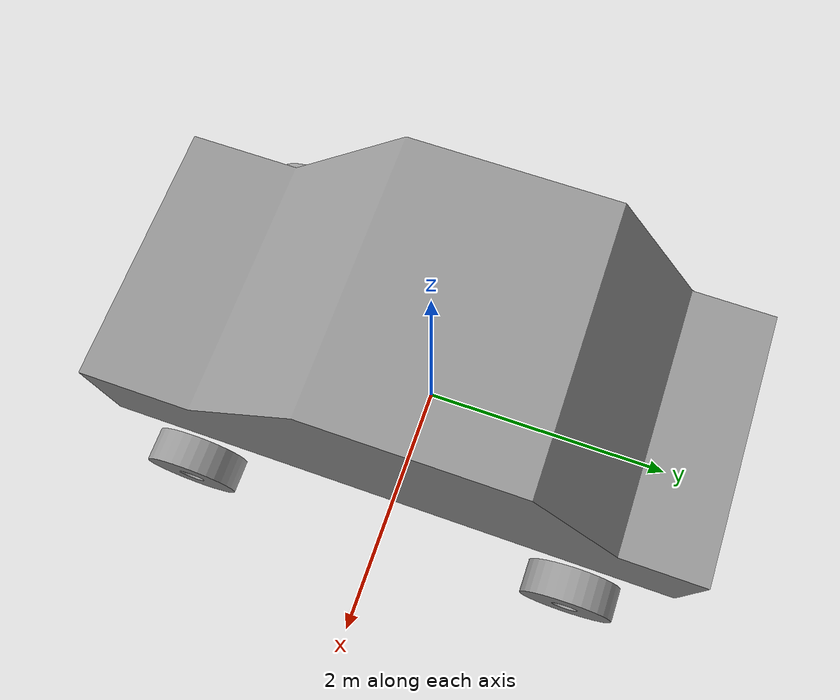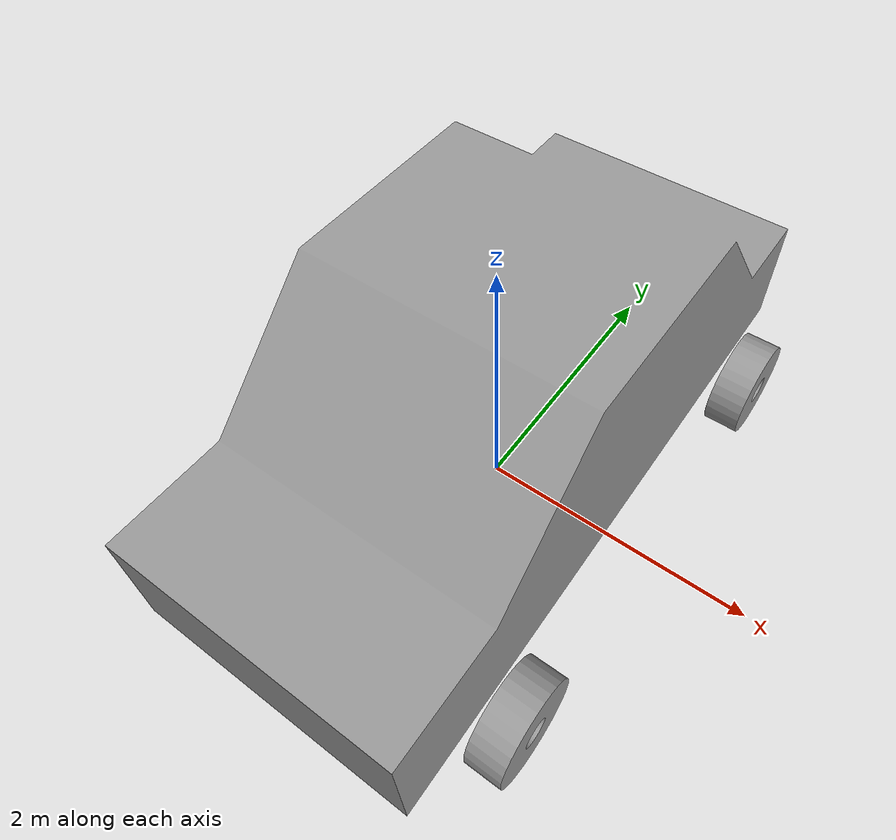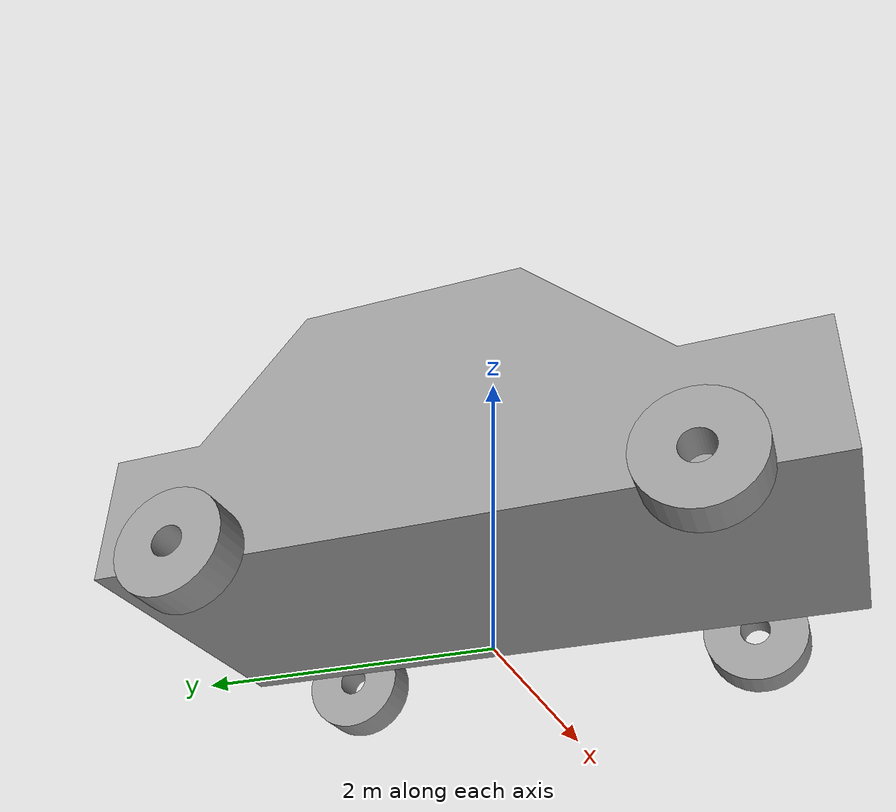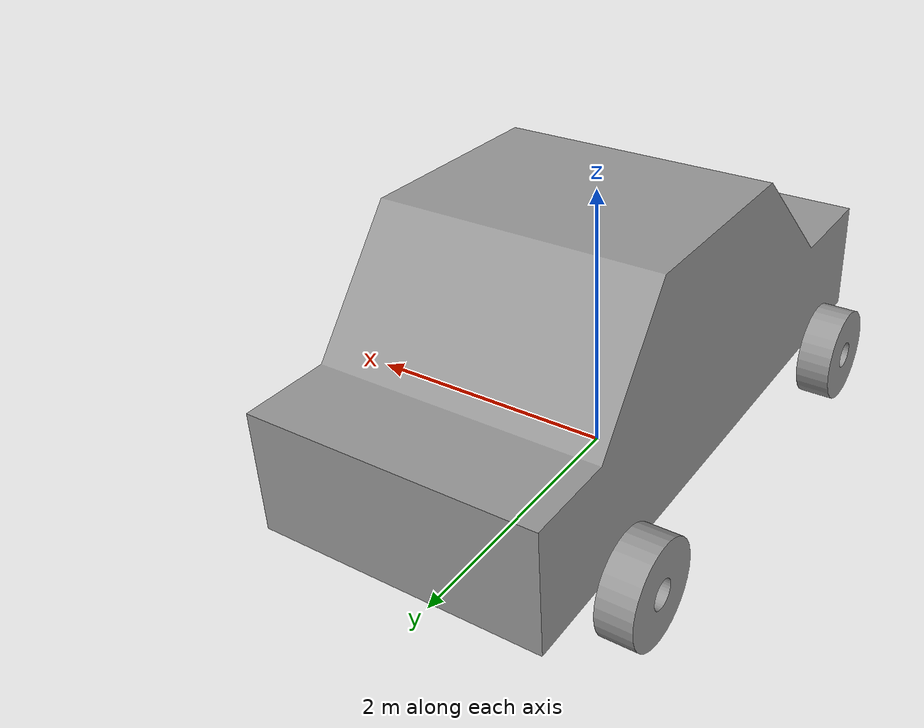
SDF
<?xml version='1.0'?>
<sdf version='1.7'>
  <model name='car_model_full'>
    <link name='link_0'>
      <inertial>
        <mass>1</mass>
        <inertia>
          <ixx>0.166667</ixx>
          <ixy>0</ixy>
          <ixz>0</ixz>
          <iyy>0.166667</iyy>
          <iyz>0</iyz>
          <izz>0.166667</izz>
        </inertia>
        <pose>0 0 0 0 -0 0</pose>
      </inertial>
      <pose>0 0 0.35 0 -0 0</pose>
      <gravity>1</gravity>
      <self_collide>0</self_collide>
      <kinematic>0</kinematic>
      <enable_wind>0</enable_wind>
      <visual name='visual'>
        <pose>0 0 0 0 -0 0</pose>
        <geometry>
          <mesh>
            <uri>/home/allsparknouvaneonss/Desktop/car_chasis.dae</uri>
            <scale>1 1 1</scale>
          </mesh>
        </geometry>
        <material>
          <lighting>1</lighting>
          <script>
            <uri>file://media/materials/scripts/gazebo.material</uri>
            <name>Gazebo/Grey</name>
          </script>
          <shader type='pixel'>
            <normal_map>__default__</normal_map>
          </shader>
          <ambient>0.3 0.3 0.3 1</ambient>
          <diffuse>0.7 0.7 0.7 1</diffuse>
          <specular>0.01 0.01 0.01 1</specular>
          <emissive>0 0 0 1</emissive>
        </material>
        <transparency>0</transparency>
        <cast_shadows>1</cast_shadows>
      </visual>
      <collision name='collision'>
        <laser_retro>0</laser_retro>
        <max_contacts>10</max_contacts>
        <pose>0 0 0 0 -0 0</pose>
        <geometry>
          <mesh>
            <uri>/home/allsparknouvaneonss/Desktop/car_chasis.dae</uri>
            <scale>1 1 1</scale>
          </mesh>
        </geometry>
        <surface>
          <friction>
            <ode>
              <mu>1</mu>
              <mu2>1</mu2>
              <fdir1>0 0 0</fdir1>
              <slip1>0</slip1>
              <slip2>0</slip2>
            </ode>
            <torsional>
              <coefficient>1</coefficient>
              <patch_radius>0</patch_radius>
              <surface_radius>0</surface_radius>
              <use_patch_radius>1</use_patch_radius>
              <ode>
                <slip>0</slip>
              </ode>
            </torsional>
          </friction>
          <bounce>
            <restitution_coefficient>0</restitution_coefficient>
            <threshold>1e+06</threshold>
          </bounce>
          <contact>
            <collide_without_contact>0</collide_without_contact>
            <collide_without_contact_bitmask>1</collide_without_contact_bitmask>
            <collide_bitmask>1</collide_bitmask>
            <ode>
              <soft_cfm>0</soft_cfm>
              <soft_erp>0.2</soft_erp>
              <kp>1e+13</kp>
              <kd>1</kd>
              <max_vel>0.01</max_vel>
              <min_depth>0</min_depth>
            </ode>
            <bullet>
              <split_impulse>1</split_impulse>
              <split_impulse_penetration_threshold>-0.01</split_impulse_penetration_threshold>
              <soft_cfm>0</soft_cfm>
              <soft_erp>0.2</soft_erp>
              <kp>1e+13</kp>
              <kd>1</kd>
            </bullet>
          </contact>
        </surface>
      </collision>
    </link>
    <link name='link_1'>
      <inertial>
        <mass>1</mass>
        <inertia>
          <ixx>0.166667</ixx>
          <ixy>0</ixy>
          <ixz>0</ixz>
          <iyy>0.166667</iyy>
          <iyz>0</iyz>
          <izz>0.166667</izz>
        </inertia>
        <pose>0 0 0 0 -0 0</pose>
      </inertial>
      <pose>1.2 -1.5 0.35 0 -0 0</pose>
      <gravity>1</gravity>
      <self_collide>0</self_collide>
      <kinematic>0</kinematic>
      <enable_wind>0</enable_wind>
      <visual name='visual'>
        <pose>0 0 0 0 -0 0</pose>
        <geometry>
          <mesh>
            <uri>/home/allsparknouvaneonss/Desktop/car_chasisi_wheel.dae</uri>
            <scale>1 1 1</scale>
          </mesh>
        </geometry>
        <material>
          <lighting>1</lighting>
          <script>
            <uri>file://media/materials/scripts/gazebo.material</uri>
            <name>Gazebo/Grey</name>
          </script>
          <shader type='pixel'>
            <normal_map>__default__</normal_map>
          </shader>
          <ambient>0.3 0.3 0.3 1</ambient>
          <diffuse>0.7 0.7 0.7 1</diffuse>
          <specular>0.01 0.01 0.01 1</specular>
          <emissive>0 0 0 1</emissive>
        </material>
        <transparency>0</transparency>
        <cast_shadows>1</cast_shadows>
      </visual>
      <collision name='collision'>
        <laser_retro>0</laser_retro>
        <max_contacts>10</max_contacts>
        <pose>0 0 0 0 -0 0</pose>
        <geometry>
          <mesh>
            <uri>/home/allsparknouvaneonss/Desktop/car_chasisi_wheel.dae</uri>
            <scale>1 1 1</scale>
          </mesh>
        </geometry>
        <surface>
          <friction>
            <ode>
              <mu>1</mu>
              <mu2>1</mu2>
              <fdir1>0 0 0</fdir1>
              <slip1>0</slip1>
              <slip2>0</slip2>
            </ode>
            <torsional>
              <coefficient>1</coefficient>
              <patch_radius>0</patch_radius>
              <surface_radius>0</surface_radius>
              <use_patch_radius>1</use_patch_radius>
              <ode>
                <slip>0</slip>
              </ode>
            </torsional>
          </friction>
          <bounce>
            <restitution_coefficient>0</restitution_coefficient>
            <threshold>1e+06</threshold>
          </bounce>
          <contact>
            <collide_without_contact>0</collide_without_contact>
            <collide_without_contact_bitmask>1</collide_without_contact_bitmask>
            <collide_bitmask>1</collide_bitmask>
            <ode>
              <soft_cfm>0</soft_cfm>
              <soft_erp>0.2</soft_erp>
              <kp>1e+13</kp>
              <kd>1</kd>
              <max_vel>0.01</max_vel>
              <min_depth>0</min_depth>
            </ode>
            <bullet>
              <split_impulse>1</split_impulse>
              <split_impulse_penetration_threshold>-0.01</split_impulse_penetration_threshold>
              <soft_cfm>0</soft_cfm>
              <soft_erp>0.2</soft_erp>
              <kp>1e+13</kp>
              <kd>1</kd>
            </bullet>
          </contact>
        </surface>
      </collision>
    </link>
    <link name='link_1_clone'>
      <inertial>
        <mass>1</mass>
        <inertia>
          <ixx>0.166667</ixx>
          <ixy>0</ixy>
          <ixz>0</ixz>
          <iyy>0.166667</iyy>
          <iyz>0</iyz>
          <izz>0.166667</izz>
        </inertia>
        <pose>0 0 0 0 -0 0</pose>
      </inertial>
      <pose>-1.2 -1.5 0.35 0 -0 0</pose>
      <gravity>1</gravity>
      <self_collide>0</self_collide>
      <kinematic>0</kinematic>
      <enable_wind>0</enable_wind>
      <visual name='visual'>
        <pose>0 0 0 0 -0 0</pose>
        <geometry>
          <mesh>
            <uri>/home/allsparknouvaneonss/Desktop/car_chasisi_wheel.dae</uri>
            <scale>1 1 1</scale>
          </mesh>
        </geometry>
        <material>
          <lighting>1</lighting>
          <script>
            <uri>file://media/materials/scripts/gazebo.material</uri>
            <name>Gazebo/Grey</name>
          </script>
          <shader type='pixel'>
            <normal_map>__default__</normal_map>
          </shader>
          <ambient>0.3 0.3 0.3 1</ambient>
          <diffuse>0.7 0.7 0.7 1</diffuse>
          <specular>0.01 0.01 0.01 1</specular>
          <emissive>0 0 0 1</emissive>
        </material>
        <transparency>0</transparency>
        <cast_shadows>1</cast_shadows>
      </visual>
      <collision name='collision'>
        <laser_retro>0</laser_retro>
        <max_contacts>10</max_contacts>
        <pose>0 0 0 0 -0 0</pose>
        <geometry>
          <mesh>
            <uri>/home/allsparknouvaneonss/Desktop/car_chasisi_wheel.dae</uri>
            <scale>1 1 1</scale>
          </mesh>
        </geometry>
        <surface>
          <friction>
            <ode>
              <mu>1</mu>
              <mu2>1</mu2>
              <fdir1>0 0 0</fdir1>
              <slip1>0</slip1>
              <slip2>0</slip2>
            </ode>
            <torsional>
              <coefficient>1</coefficient>
              <patch_radius>0</patch_radius>
              <surface_radius>0</surface_radius>
              <use_patch_radius>1</use_patch_radius>
              <ode>
                <slip>0</slip>
              </ode>
            </torsional>
          </friction>
          <bounce>
            <restitution_coefficient>0</restitution_coefficient>
            <threshold>1e+06</threshold>
          </bounce>
          <contact>
            <collide_without_contact>0</collide_without_contact>
            <collide_without_contact_bitmask>1</collide_without_contact_bitmask>
            <collide_bitmask>1</collide_bitmask>
            <ode>
              <soft_cfm>0</soft_cfm>
              <soft_erp>0.2</soft_erp>
              <kp>1e+13</kp>
              <kd>1</kd>
              <max_vel>0.01</max_vel>
              <min_depth>0</min_depth>
            </ode>
            <bullet>
              <split_impulse>1</split_impulse>
              <split_impulse_penetration_threshold>-0.01</split_impulse_penetration_threshold>
              <soft_cfm>0</soft_cfm>
              <soft_erp>0.2</soft_erp>
              <kp>1e+13</kp>
              <kd>1</kd>
            </bullet>
          </contact>
        </surface>
      </collision>
    </link>
    <link name='link_1_clone_0'>
      <inertial>
        <mass>1</mass>
        <inertia>
          <ixx>0.166667</ixx>
          <ixy>0</ixy>
          <ixz>0</ixz>
          <iyy>0.166667</iyy>
          <iyz>0</iyz>
          <izz>0.166667</izz>
        </inertia>
        <pose>0 0 0 0 -0 0</pose>
      </inertial>
      <pose>1.2 1.5 0.35 0 -0 0</pose>
      <gravity>1</gravity>
      <self_collide>0</self_collide>
      <kinematic>0</kinematic>
      <enable_wind>0</enable_wind>
      <visual name='visual'>
        <pose>0 0 0 0 -0 0</pose>
        <geometry>
          <mesh>
            <uri>/home/allsparknouvaneonss/Desktop/car_chasisi_wheel.dae</uri>
            <scale>1 1 1</scale>
          </mesh>
        </geometry>
        <material>
          <lighting>1</lighting>
          <script>
            <uri>file://media/materials/scripts/gazebo.material</uri>
            <name>Gazebo/Grey</name>
          </script>
          <shader type='pixel'>
            <normal_map>__default__</normal_map>
          </shader>
          <ambient>0.3 0.3 0.3 1</ambient>
          <diffuse>0.7 0.7 0.7 1</diffuse>
          <specular>0.01 0.01 0.01 1</specular>
          <emissive>0 0 0 1</emissive>
        </material>
        <transparency>0</transparency>
        <cast_shadows>1</cast_shadows>
      </visual>
      <collision name='collision'>
        <laser_retro>0</laser_retro>
        <max_contacts>10</max_contacts>
        <pose>0 0 0 0 -0 0</pose>
        <geometry>
          <mesh>
            <uri>/home/allsparknouvaneonss/Desktop/car_chasisi_wheel.dae</uri>
            <scale>1 1 1</scale>
          </mesh>
        </geometry>
        <surface>
          <friction>
            <ode>
              <mu>1</mu>
              <mu2>1</mu2>
              <fdir1>0 0 0</fdir1>
              <slip1>0</slip1>
              <slip2>0</slip2>
            </ode>
            <torsional>
              <coefficient>1</coefficient>
              <patch_radius>0</patch_radius>
              <surface_radius>0</surface_radius>
              <use_patch_radius>1</use_patch_radius>
              <ode>
                <slip>0</slip>
              </ode>
            </torsional>
          </friction>
          <bounce>
            <restitution_coefficient>0</restitution_coefficient>
            <threshold>1e+06</threshold>
          </bounce>
          <contact>
            <collide_without_contact>0</collide_without_contact>
            <collide_without_contact_bitmask>1</collide_without_contact_bitmask>
            <collide_bitmask>1</collide_bitmask>
            <ode>
              <soft_cfm>0</soft_cfm>
              <soft_erp>0.2</soft_erp>
              <kp>1e+13</kp>
              <kd>1</kd>
              <max_vel>0.01</max_vel>
              <min_depth>0</min_depth>
            </ode>
            <bullet>
              <split_impulse>1</split_impulse>
              <split_impulse_penetration_threshold>-0.01</split_impulse_penetration_threshold>
              <soft_cfm>0</soft_cfm>
              <soft_erp>0.2</soft_erp>
              <kp>1e+13</kp>
              <kd>1</kd>
            </bullet>
          </contact>
        </surface>
      </collision>
    </link>
    <link name='link_1_clone_1'>
      <inertial>
        <mass>1</mass>
        <inertia>
          <ixx>0.166667</ixx>
          <ixy>0</ixy>
          <ixz>0</ixz>
          <iyy>0.166667</iyy>
          <iyz>0</iyz>
          <izz>0.166667</izz>
        </inertia>
        <pose>0 0 0 0 -0 0</pose>
      </inertial>
      <pose>-1.2 1.5 0.35 0 -0 0</pose>
      <gravity>1</gravity>
      <self_collide>0</self_collide>
      <kinematic>0</kinematic>
      <enable_wind>0</enable_wind>
      <visual name='visual'>
        <pose>0 0 0 0 -0 0</pose>
        <geometry>
          <mesh>
            <uri>/home/allsparknouvaneonss/Desktop/car_chasisi_wheel.dae</uri>
            <scale>1 1 1</scale>
          </mesh>
        </geometry>
        <material>
          <lighting>1</lighting>
          <script>
            <uri>file://media/materials/scripts/gazebo.material</uri>
            <name>Gazebo/Grey</name>
          </script>
          <shader type='pixel'>
            <normal_map>__default__</normal_map>
          </shader>
          <ambient>0.3 0.3 0.3 1</ambient>
          <diffuse>0.7 0.7 0.7 1</diffuse>
          <specular>0.01 0.01 0.01 1</specular>
          <emissive>0 0 0 1</emissive>
        </material>
        <transparency>0</transparency>
        <cast_shadows>1</cast_shadows>
      </visual>
      <collision name='collision'>
        <laser_retro>0</laser_retro>
        <max_contacts>10</max_contacts>
        <pose>0 0 0 0 -0 0</pose>
        <geometry>
          <mesh>
            <uri>/home/allsparknouvaneonss/Desktop/car_chasisi_wheel.dae</uri>
            <scale>1 1 1</scale>
          </mesh>
        </geometry>
        <surface>
          <friction>
            <ode>
              <mu>1</mu>
              <mu2>1</mu2>
              <fdir1>0 0 0</fdir1>
              <slip1>0</slip1>
              <slip2>0</slip2>
            </ode>
            <torsional>
              <coefficient>1</coefficient>
              <patch_radius>0</patch_radius>
              <surface_radius>0</surface_radius>
              <use_patch_radius>1</use_patch_radius>
              <ode>
                <slip>0</slip>
              </ode>
            </torsional>
          </friction>
          <bounce>
            <restitution_coefficient>0</restitution_coefficient>
            <threshold>1e+06</threshold>
          </bounce>
          <contact>
            <collide_without_contact>0</collide_without_contact>
            <collide_without_contact_bitmask>1</collide_without_contact_bitmask>
            <collide_bitmask>1</collide_bitmask>
            <ode>
              <soft_cfm>0</soft_cfm>
              <soft_erp>0.2</soft_erp>
              <kp>1e+13</kp>
              <kd>1</kd>
              <max_vel>0.01</max_vel>
              <min_depth>0</min_depth>
            </ode>
            <bullet>
              <split_impulse>1</split_impulse>
              <split_impulse_penetration_threshold>-0.01</split_impulse_penetration_threshold>
              <soft_cfm>0</soft_cfm>
              <soft_erp>0.2</soft_erp>
              <kp>1e+13</kp>
              <kd>1</kd>
            </bullet>
          </contact>
        </surface>
      </collision>
    </link>
    <joint name='Front_Left' type='revolute'>
      <parent>link_0</parent>
      <child>link_1</child>
      <pose>0 0 0 0 -0 0</pose>
      <axis>
        <xyz>1 0 0</xyz>
        <limit>
          <lower>-1.79769e+308</lower>
          <upper>1.79769e+308</upper>
          <effort>-1</effort>
          <velocity>-1</velocity>
        </limit>
        <dynamics>
          <spring_reference>0</spring_reference>
          <spring_stiffness>0</spring_stiffness>
          <damping>0</damping>
          <friction>0</friction>
        </dynamics>
      </axis>
      <physics>
        <ode>
          <limit>
            <cfm>0</cfm>
            <erp>0.2</erp>
          </limit>
          <suspension>
            <cfm>0</cfm>
            <erp>0.2</erp>
          </suspension>
        </ode>
      </physics>
    </joint>
    <joint name='Front_Right' type='revolute'>
      <parent>link_0</parent>
      <child>link_1_clone</child>
      <pose>0 0 0 0 -0 0</pose>
      <axis>
        <xyz>1 0 0</xyz>
        <limit>
          <lower>-1.79769e+308</lower>
          <upper>1.79769e+308</upper>
          <effort>-1</effort>
          <velocity>-1</velocity>
        </limit>
        <dynamics>
          <spring_reference>0</spring_reference>
          <spring_stiffness>0</spring_stiffness>
          <damping>0</damping>
          <friction>0</friction>
        </dynamics>
      </axis>
      <physics>
        <ode>
          <limit>
            <cfm>0</cfm>
            <erp>0.2</erp>
          </limit>
          <suspension>
            <cfm>0</cfm>
            <erp>0.2</erp>
          </suspension>
        </ode>
      </physics>
    </joint>
    <joint name='Back_Left' type='revolute'>
      <parent>link_0</parent>
      <child>link_1_clone_0</child>
      <pose>0 0 0 0 -0 0</pose>
      <axis>
        <xyz>1 0 0</xyz>
        <limit>
          <lower>-1.79769e+308</lower>
          <upper>1.79769e+308</upper>
          <effort>-1</effort>
          <velocity>-1</velocity>
        </limit>
        <dynamics>
          <spring_reference>0</spring_reference>
          <spring_stiffness>0</spring_stiffness>
          <damping>0</damping>
          <friction>0</friction>
        </dynamics>
      </axis>
      <physics>
        <ode>
          <limit>
            <cfm>0</cfm>
            <erp>0.2</erp>
          </limit>
          <suspension>
            <cfm>0</cfm>
            <erp>0.2</erp>
          </suspension>
        </ode>
      </physics>
    </joint>
    <joint name='Back_Right' type='revolute'>
      <parent>link_0</parent>
      <child>link_1_clone_1</child>
      <pose>0 0 0 0 -0 0</pose>
      <axis>
        <xyz>1 0 0</xyz>
        <limit>
          <lower>-1.79769e+308</lower>
          <upper>1.79769e+308</upper>
          <effort>-1</effort>
          <velocity>-1</velocity>
        </limit>
        <dynamics>
          <spring_reference>0</spring_reference>
          <spring_stiffness>0</spring_stiffness>
          <damping>0</damping>
          <friction>0</friction>
        </dynamics>
      </axis>
      <physics>
        <ode>
          <limit>
            <cfm>0</cfm>
            <erp>0.2</erp>
          </limit>
          <suspension>
            <cfm>0</cfm>
            <erp>0.2</erp>
          </suspension>
        </ode>
      </physics>
    </joint>
    <static>0</static>
    <allow_auto_disable>1</allow_auto_disable>
  </model>
</sdf>
